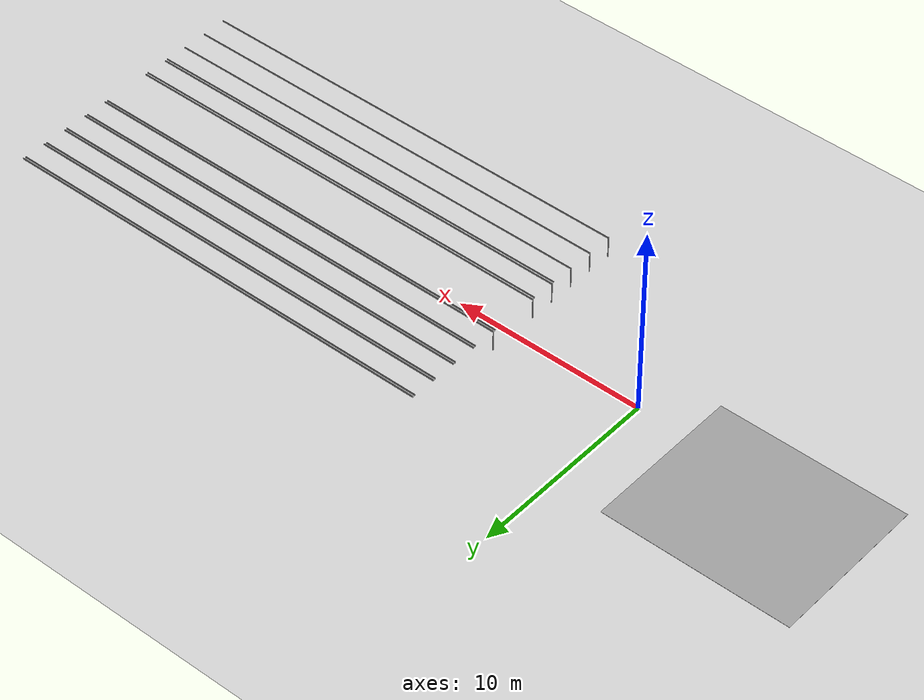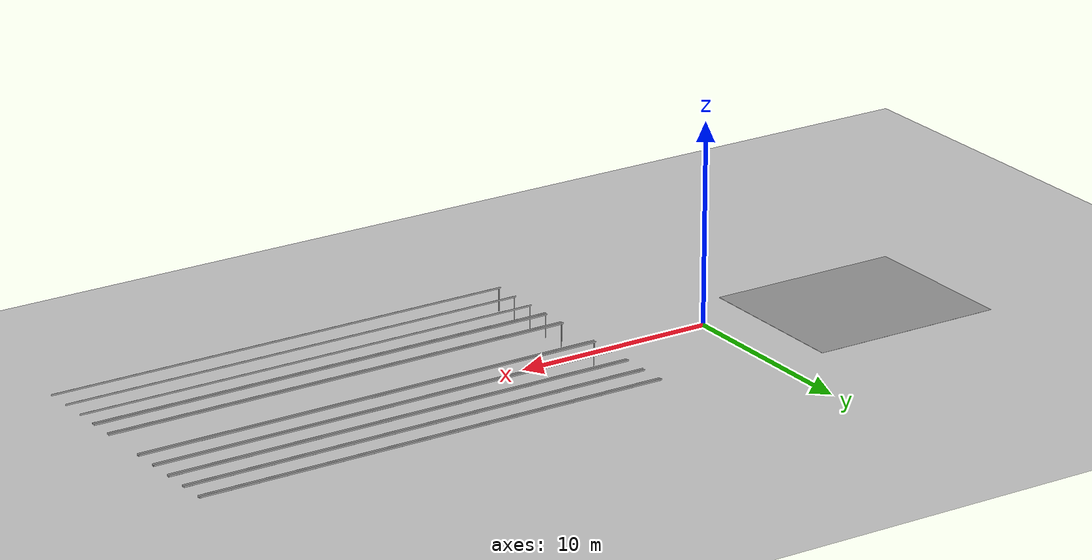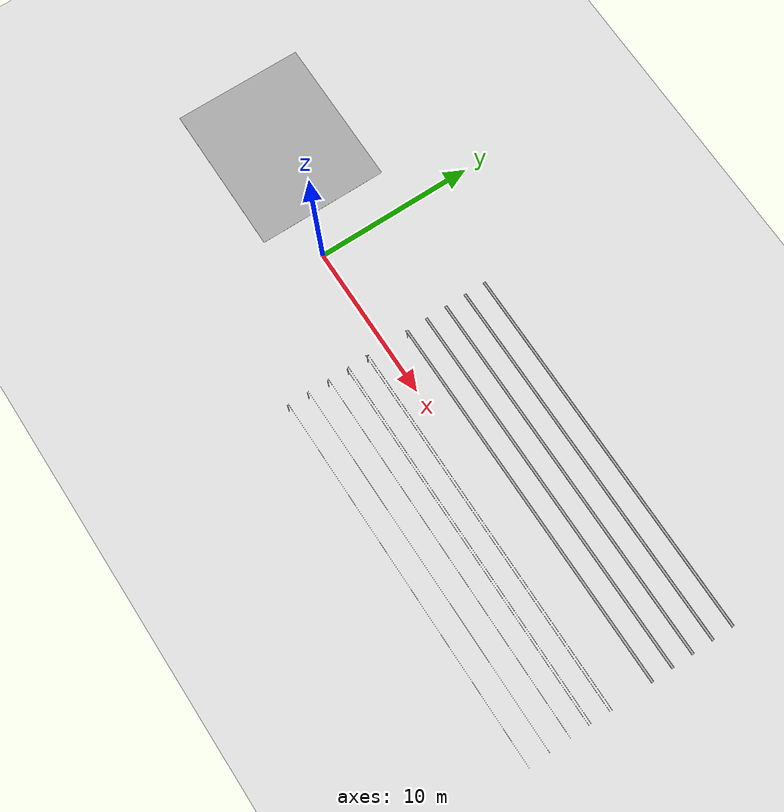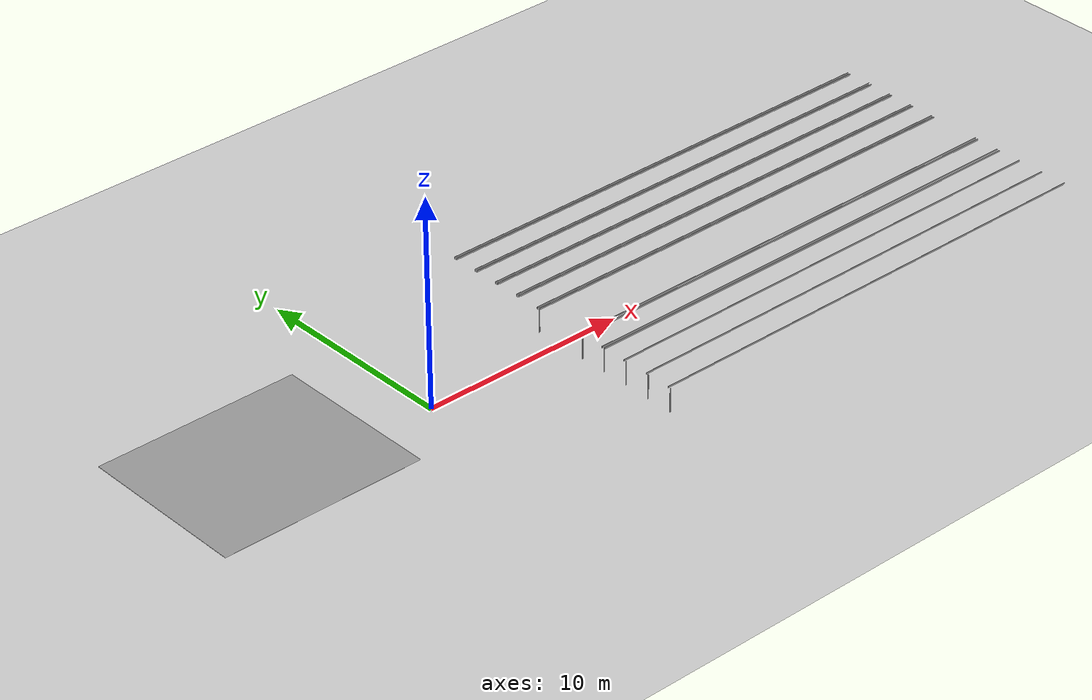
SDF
<sdf version="1.4">
 <world name="default">
  <model name="pole_0">
   <static>1</static>
   <pose>7.000 -6.640 0.575 0.0 0.0 0.0</pose>
   <link name="link">
    <collision name="collision">
     <geometry><cylinder><length>1.15</length><radius>0.025</radius></cylinder></geometry>
    </collision>
    <visual name="visual">
     <geometry><cylinder><length>1.15</length><radius>0.025</radius></cylinder></geometry>
     <material>
      <script><uri>file://media/materials/scripts/gazebo.material</uri><name>Gazebo/Chrome</name></script>
      <shader type="vertex"><normal_map>__default__</normal_map></shader>
      <emissive>0.1 0.1 0.1 1</emissive>
      <specular>0.01 0.01 0.01 1</specular>
      <ambient>0.5 0.5 0.5 1</ambient>
      <diffuse>0.05 0.05 0.05 1</diffuse>
     </material>
    </visual>
   </link>
  </model>
  <model name="pole_1">
   <static>1</static>
   <pose>7.000 -5.320 0.575 0.0 0.0 0.0</pose>
   <link name="link">
    <collision name="collision">
     <geometry><cylinder><length>1.15</length><radius>0.025</radius></cylinder></geometry>
    </collision>
    <visual name="visual">
     <geometry><cylinder><length>1.15</length><radius>0.025</radius></cylinder></geometry>
     <material>
      <script><uri>file://media/materials/scripts/gazebo.material</uri><name>Gazebo/Chrome</name></script>
      <shader type="vertex"><normal_map>__default__</normal_map></shader>
      <emissive>0.1 0.1 0.1 1</emissive>
      <specular>0.01 0.01 0.01 1</specular>
      <ambient>0.5 0.5 0.5 1</ambient>
      <diffuse>0.05 0.05 0.05 1</diffuse>
     </material>
    </visual>
   </link>
  </model>
  <model name="pole_2">
   <static>1</static>
   <pose>7.000 -4.000 0.575 0.0 0.0 0.0</pose>
   <link name="link">
    <collision name="collision">
     <geometry><cylinder><length>1.15</length><radius>0.025</radius></cylinder></geometry>
    </collision>
    <visual name="visual">
     <geometry><cylinder><length>1.15</length><radius>0.025</radius></cylinder></geometry>
     <material>
      <script><uri>file://media/materials/scripts/gazebo.material</uri><name>Gazebo/Chrome</name></script>
      <shader type="vertex"><normal_map>__default__</normal_map></shader>
      <emissive>0.1 0.1 0.1 1</emissive>
      <specular>0.01 0.01 0.01 1</specular>
      <ambient>0.5 0.5 0.5 1</ambient>
      <diffuse>0.05 0.05 0.05 1</diffuse>
     </material>
    </visual>
   </link>
  </model>
  <model name="pole_3">
   <static>1</static>
   <pose>7.000 -2.680 0.575 0.0 0.0 0.0</pose>
   <link name="link">
    <collision name="collision">
     <geometry><cylinder><length>1.15</length><radius>0.025</radius></cylinder></geometry>
    </collision>
    <visual name="visual">
     <geometry><cylinder><length>1.15</length><radius>0.025</radius></cylinder></geometry>
     <material>
      <script><uri>file://media/materials/scripts/gazebo.material</uri><name>Gazebo/Chrome</name></script>
      <shader type="vertex"><normal_map>__default__</normal_map></shader>
      <emissive>0.1 0.1 0.1 1</emissive>
      <specular>0.01 0.01 0.01 1</specular>
      <ambient>0.5 0.5 0.5 1</ambient>
      <diffuse>0.05 0.05 0.05 1</diffuse>
     </material>
    </visual>
   </link>
  </model>
  <model name="pole_4">
   <static>1</static>
   <pose>7.000 -1.360 0.575 0.0 0.0 0.0</pose>
   <link name="link">
    <collision name="collision">
     <geometry><cylinder><length>1.15</length><radius>0.025</radius></cylinder></geometry>
    </collision>
    <visual name="visual">
     <geometry><cylinder><length>1.15</length><radius>0.025</radius></cylinder></geometry>
     <material>
      <script><uri>file://media/materials/scripts/gazebo.material</uri><name>Gazebo/Chrome</name></script>
      <shader type="vertex"><normal_map>__default__</normal_map></shader>
      <emissive>0.1 0.1 0.1 1</emissive>
      <specular>0.01 0.01 0.01 1</specular>
      <ambient>0.5 0.5 0.5 1</ambient>
      <diffuse>0.05 0.05 0.05 1</diffuse>
     </material>
    </visual>
   </link>
  </model>
  <model name="tray_p2_3">
   <static>1</static>
   <link name="link_0">
    <collision name="collision"><geometry><box><size>23.62 0.085 0.005</size></box></geometry></collision>
    <visual name="visual">
     <geometry><box><size>23.62 0.085 0.005</size></box></geometry>
     <material>
      <script><uri>file://media/materials/scripts/gazebo.material</uri><name>Gazebo/Grey</name></script>
      <emissive>0 0 0 1</emissive>
      <shader type="vertex"><normal_map>__default__</normal_map></shader>
      <specular>0.01 0.01 0.01 1</specular>
      <lighting>1</lighting>
      <ambient>0.7 0.7 0.7 1</ambient>
      <diffuse>0.3 0.3 0.3 1</diffuse>
     </material>
    </visual>
    <pose>18.760 -2.755 1.19165 1.5707 0.0 0.0</pose>
   </link>
  </model>
  <model name="tray_p2_4">
   <static>1</static>
   <link name="link_0">
    <collision name="collision"><geometry><box><size>23.62 0.085 0.005</size></box></geometry></collision>
    <visual name="visual">
     <geometry><box><size>23.62 0.085 0.005</size></box></geometry>
     <material>
      <script><uri>file://media/materials/scripts/gazebo.material</uri><name>Gazebo/Grey</name></script>
      <emissive>0 0 0 1</emissive>
      <shader type="vertex"><normal_map>__default__</normal_map></shader>
      <specular>0.01 0.01 0.01 1</specular>
      <lighting>1</lighting>
      <ambient>0.7 0.7 0.7 1</ambient>
      <diffuse>0.3 0.3 0.3 1</diffuse>
     </material>
    </visual>
    <pose>18.760 -1.435 1.19165 1.5707 0.0 0.0</pose>
   </link>
  </model>
  <model name="tray_p2_5">
   <static>1</static>
   <link name="link_0">
    <collision name="collision"><geometry><box><size>23.62 0.085 0.005</size></box></geometry></collision>
    <visual name="visual">
     <geometry><box><size>23.62 0.085 0.005</size></box></geometry>
     <material>
      <script><uri>file://media/materials/scripts/gazebo.material</uri><name>Gazebo/Grey</name></script>
      <emissive>0 0 0 1</emissive>
      <shader type="vertex"><normal_map>__default__</normal_map></shader>
      <specular>0.01 0.01 0.01 1</specular>
      <lighting>1</lighting>
      <ambient>0.7 0.7 0.7 1</ambient>
      <diffuse>0.3 0.3 0.3 1</diffuse>
     </material>
    </visual>
    <pose>18.760 -6.565 1.19165 1.5707 0.0 0.0</pose>
   </link>
  </model>
  <model name="tray_p2_6">
   <static>1</static>
   <link name="link_0">
    <collision name="collision"><geometry><box><size>23.62 0.085 0.005</size></box></geometry></collision>
    <visual name="visual">
     <geometry><box><size>23.62 0.085 0.005</size></box></geometry>
     <material>
      <script><uri>file://media/materials/scripts/gazebo.material</uri><name>Gazebo/Grey</name></script>
      <emissive>0 0 0 1</emissive>
      <shader type="vertex"><normal_map>__default__</normal_map></shader>
      <specular>0.01 0.01 0.01 1</specular>
      <lighting>1</lighting>
      <ambient>0.7 0.7 0.7 1</ambient>
      <diffuse>0.3 0.3 0.3 1</diffuse>
     </material>
    </visual>
    <pose>18.760 -5.245 1.19165 1.5707 0.0 0.0</pose>
   </link>
  </model>
  <model name="tray_p2_7">
   <static>1</static>
   <link name="link_0">
    <collision name="collision"><geometry><box><size>23.62 0.085 0.005</size></box></geometry></collision>
    <visual name="visual">
     <geometry><box><size>23.62 0.085 0.005</size></box></geometry>
     <material>
      <script><uri>file://media/materials/scripts/gazebo.material</uri><name>Gazebo/Grey</name></script>
      <emissive>0 0 0 1</emissive>
      <shader type="vertex"><normal_map>__default__</normal_map></shader>
      <specular>0.01 0.01 0.01 1</specular>
      <lighting>1</lighting>
      <ambient>0.7 0.7 0.7 1</ambient>
      <diffuse>0.3 0.3 0.3 1</diffuse>
     </material>
    </visual>
    <pose>18.760 -3.925 1.19165 1.5707 0.0 0.0</pose>
   </link>
  </model>
  <model name="tray_p2_8">
   <static>1</static>
   <link name="link_0">
    <collision name="collision"><geometry><box><size>23.62 0.085 0.005</size></box></geometry></collision>
    <visual name="visual">
     <geometry><box><size>23.62 0.085 0.005</size></box></geometry>
     <material>
      <script><uri>file://media/materials/scripts/gazebo.material</uri><name>Gazebo/Grey</name></script>
      <emissive>0 0 0 1</emissive>
      <shader type="vertex"><normal_map>__default__</normal_map></shader>
      <specular>0.01 0.01 0.01 1</specular>
      <lighting>1</lighting>
      <ambient>0.7 0.7 0.7 1</ambient>
      <diffuse>0.3 0.3 0.3 1</diffuse>
     </material>
    </visual>
    <pose>18.760 -2.605 1.19165 1.5707 0.0 0.0</pose>
   </link>
  </model>
  <model name="tray_p2_9">
   <static>1</static>
   <link name="link_0">
    <collision name="collision"><geometry><box><size>23.62 0.085 0.005</size></box></geometry></collision>
    <visual name="visual">
     <geometry><box><size>23.62 0.085 0.005</size></box></geometry>
     <material>
      <script><uri>file://media/materials/scripts/gazebo.material</uri><name>Gazebo/Grey</name></script>
      <emissive>0 0 0 1</emissive>
      <shader type="vertex"><normal_map>__default__</normal_map></shader>
      <specular>0.01 0.01 0.01 1</specular>
      <lighting>1</lighting>
      <ambient>0.7 0.7 0.7 1</ambient>
      <diffuse>0.3 0.3 0.3 1</diffuse>
     </material>
    </visual>
    <pose>18.760 -1.285 1.19165 1.5707 0.0 0.0</pose>
   </link>
  </model>
  <model name="pole_45">
   <static>1</static>
   <pose>7.000 1.320 0.575 0.0 0.0 0.0</pose>
   <link name="link">
    <collision name="collision">
     <geometry><cylinder><length>1.15</length><radius>0.025</radius></cylinder></geometry>
    </collision>
    <visual name="visual">
     <geometry><cylinder><length>1.15</length><radius>0.025</radius></cylinder></geometry>
     <material>
      <script><uri>file://media/materials/scripts/gazebo.material</uri><name>Gazebo/Chrome</name></script>
      <shader type="vertex"><normal_map>__default__</normal_map></shader>
      <emissive>0.1 0.1 0.1 1</emissive>
      <specular>0.01 0.01 0.01 1</specular>
      <ambient>0.5 0.5 0.5 1</ambient>
      <diffuse>0.05 0.05 0.05 1</diffuse>
     </material>
    </visual>
   </link>
  </model>
  <model name="tray_5">
   <static>1</static>
   <link name="link_0">
    <collision name="collision"><geometry><box><size>23.620 0.15 0.005</size></box></geometry></collision>
    <visual name="visual">
     <geometry><box><size>23.620 0.15 0.005</size></box></geometry>
     <material>
      <script><uri>file://media/materials/scripts/gazebo.material</uri><name>Gazebo/Grey</name></script>
      <emissive>0 0 0 1</emissive>
      <shader type="vertex"><normal_map>__default__</normal_map></shader>
      <specular>0.01 0.01 0.01 1</specular>
      <lighting>1</lighting>
      <ambient>0.7 0.7 0.7 1</ambient>
      <diffuse>0.3 0.3 0.3 1</diffuse>
     </material>
    </visual>
    <pose>18.760 1.320 1.14965 0.0 0.0 0.0</pose>
   </link>
  </model>
  <model name="tray_6">
   <static>1</static>
   <link name="link_0">
    <collision name="collision"><geometry><box><size>23.620 0.15 0.005</size></box></geometry></collision>
    <visual name="visual">
     <geometry><box><size>23.620 0.15 0.005</size></box></geometry>
     <material>
      <script><uri>file://media/materials/scripts/gazebo.material</uri><name>Gazebo/Grey</name></script>
      <emissive>0 0 0 1</emissive>
      <shader type="vertex"><normal_map>__default__</normal_map></shader>
      <specular>0.01 0.01 0.01 1</specular>
      <lighting>1</lighting>
      <ambient>0.7 0.7 0.7 1</ambient>
      <diffuse>0.3 0.3 0.3 1</diffuse>
     </material>
    </visual>
    <pose>18.760 2.640 1.14965 0.0 0.0 0.0</pose>
   </link>
  </model>
  <model name="tray_7">
   <static>1</static>
   <link name="link_0">
    <collision name="collision"><geometry><box><size>23.620 0.15 0.005</size></box></geometry></collision>
    <visual name="visual">
     <geometry><box><size>23.620 0.15 0.005</size></box></geometry>
     <material>
      <script><uri>file://media/materials/scripts/gazebo.material</uri><name>Gazebo/Grey</name></script>
      <emissive>0 0 0 1</emissive>
      <shader type="vertex"><normal_map>__default__</normal_map></shader>
      <specular>0.01 0.01 0.01 1</specular>
      <lighting>1</lighting>
      <ambient>0.7 0.7 0.7 1</ambient>
      <diffuse>0.3 0.3 0.3 1</diffuse>
     </material>
    </visual>
    <pose>18.760 3.960 1.14965 0.0 0.0 0.0</pose>
   </link>
  </model>
  <model name="tray_8">
   <static>1</static>
   <link name="link_0">
    <collision name="collision"><geometry><box><size>23.620 0.15 0.005</size></box></geometry></collision>
    <visual name="visual">
     <geometry><box><size>23.620 0.15 0.005</size></box></geometry>
     <material>
      <script><uri>file://media/materials/scripts/gazebo.material</uri><name>Gazebo/Grey</name></script>
      <emissive>0 0 0 1</emissive>
      <shader type="vertex"><normal_map>__default__</normal_map></shader>
      <specular>0.01 0.01 0.01 1</specular>
      <lighting>1</lighting>
      <ambient>0.7 0.7 0.7 1</ambient>
      <diffuse>0.3 0.3 0.3 1</diffuse>
     </material>
    </visual>
    <pose>18.760 5.280 1.14965 0.0 0.0 0.0</pose>
   </link>
  </model>
  <model name="tray_9">
   <static>1</static>
   <link name="link_0">
    <collision name="collision"><geometry><box><size>23.620 0.15 0.005</size></box></geometry></collision>
    <visual name="visual">
     <geometry><box><size>23.620 0.15 0.005</size></box></geometry>
     <material>
      <script><uri>file://media/materials/scripts/gazebo.material</uri><name>Gazebo/Grey</name></script>
      <emissive>0 0 0 1</emissive>
      <shader type="vertex"><normal_map>__default__</normal_map></shader>
      <specular>0.01 0.01 0.01 1</specular>
      <lighting>1</lighting>
      <ambient>0.7 0.7 0.7 1</ambient>
      <diffuse>0.3 0.3 0.3 1</diffuse>
     </material>
    </visual>
    <pose>18.760 6.600 1.14965 0.0 0.0 0.0</pose>
   </link>
  </model>
  <model name="tray_p2_10">
   <static>1</static>
   <link name="link_0">
    <collision name="collision"><geometry><box><size>23.62 0.085 0.005</size></box></geometry></collision>
    <visual name="visual">
     <geometry><box><size>23.62 0.085 0.005</size></box></geometry>
     <material>
      <script><uri>file://media/materials/scripts/gazebo.material</uri><name>Gazebo/Grey</name></script>
      <emissive>0 0 0 1</emissive>
      <shader type="vertex"><normal_map>__default__</normal_map></shader>
      <specular>0.01 0.01 0.01 1</specular>
      <lighting>1</lighting>
      <ambient>0.7 0.7 0.7 1</ambient>
      <diffuse>0.3 0.3 0.3 1</diffuse>
     </material>
    </visual>
    <pose>18.760 1.245 1.19165 1.5707 0.0 0.0</pose>
   </link>
  </model>
  <model name="tray_p2_11">
   <static>1</static>
   <link name="link_0">
    <collision name="collision"><geometry><box><size>23.62 0.085 0.005</size></box></geometry></collision>
    <visual name="visual">
     <geometry><box><size>23.62 0.085 0.005</size></box></geometry>
     <material>
      <script><uri>file://media/materials/scripts/gazebo.material</uri><name>Gazebo/Grey</name></script>
      <emissive>0 0 0 1</emissive>
      <shader type="vertex"><normal_map>__default__</normal_map></shader>
      <specular>0.01 0.01 0.01 1</specular>
      <lighting>1</lighting>
      <ambient>0.7 0.7 0.7 1</ambient>
      <diffuse>0.3 0.3 0.3 1</diffuse>
     </material>
    </visual>
    <pose>18.760 2.565 1.19165 1.5707 0.0 0.0</pose>
   </link>
  </model>
  <model name="tray_p2_12">
   <static>1</static>
   <link name="link_0">
    <collision name="collision"><geometry><box><size>23.62 0.085 0.005</size></box></geometry></collision>
    <visual name="visual">
     <geometry><box><size>23.62 0.085 0.005</size></box></geometry>
     <material>
      <script><uri>file://media/materials/scripts/gazebo.material</uri><name>Gazebo/Grey</name></script>
      <emissive>0 0 0 1</emissive>
      <shader type="vertex"><normal_map>__default__</normal_map></shader>
      <specular>0.01 0.01 0.01 1</specular>
      <lighting>1</lighting>
      <ambient>0.7 0.7 0.7 1</ambient>
      <diffuse>0.3 0.3 0.3 1</diffuse>
     </material>
    </visual>
    <pose>18.760 3.885 1.19165 1.5707 0.0 0.0</pose>
   </link>
  </model>
  <model name="tray_p2_13">
   <static>1</static>
   <link name="link_0">
    <collision name="collision"><geometry><box><size>23.62 0.085 0.005</size></box></geometry></collision>
    <visual name="visual">
     <geometry><box><size>23.62 0.085 0.005</size></box></geometry>
     <material>
      <script><uri>file://media/materials/scripts/gazebo.material</uri><name>Gazebo/Grey</name></script>
      <emissive>0 0 0 1</emissive>
      <shader type="vertex"><normal_map>__default__</normal_map></shader>
      <specular>0.01 0.01 0.01 1</specular>
      <lighting>1</lighting>
      <ambient>0.7 0.7 0.7 1</ambient>
      <diffuse>0.3 0.3 0.3 1</diffuse>
     </material>
    </visual>
    <pose>18.760 5.205 1.19165 1.5707 0.0 0.0</pose>
   </link>
  </model>
  <model name="tray_p2_14">
   <static>1</static>
   <link name="link_0">
    <collision name="collision"><geometry><box><size>23.62 0.085 0.005</size></box></geometry></collision>
    <visual name="visual">
     <geometry><box><size>23.62 0.085 0.005</size></box></geometry>
     <material>
      <script><uri>file://media/materials/scripts/gazebo.material</uri><name>Gazebo/Grey</name></script>
      <emissive>0 0 0 1</emissive>
      <shader type="vertex"><normal_map>__default__</normal_map></shader>
      <specular>0.01 0.01 0.01 1</specular>
      <lighting>1</lighting>
      <ambient>0.7 0.7 0.7 1</ambient>
      <diffuse>0.3 0.3 0.3 1</diffuse>
     </material>
    </visual>
    <pose>18.760 6.525 1.19165 1.5707 0.0 0.0</pose>
   </link>
  </model>
  <model name="tray_p2_15">
   <static>1</static>
   <link name="link_0">
    <collision name="collision"><geometry><box><size>23.62 0.085 0.005</size></box></geometry></collision>
    <visual name="visual">
     <geometry><box><size>23.62 0.085 0.005</size></box></geometry>
     <material>
      <script><uri>file://media/materials/scripts/gazebo.material</uri><name>Gazebo/Grey</name></script>
      <emissive>0 0 0 1</emissive>
      <shader type="vertex"><normal_map>__default__</normal_map></shader>
      <specular>0.01 0.01 0.01 1</specular>
      <lighting>1</lighting>
      <ambient>0.7 0.7 0.7 1</ambient>
      <diffuse>0.3 0.3 0.3 1</diffuse>
     </material>
    </visual>
    <pose>18.760 1.395 1.19165 1.5707 0.0 0.0</pose>
   </link>
  </model>
  <model name="tray_p2_16">
   <static>1</static>
   <link name="link_0">
    <collision name="collision"><geometry><box><size>23.62 0.085 0.005</size></box></geometry></collision>
    <visual name="visual">
     <geometry><box><size>23.62 0.085 0.005</size></box></geometry>
     <material>
      <script><uri>file://media/materials/scripts/gazebo.material</uri><name>Gazebo/Grey</name></script>
      <emissive>0 0 0 1</emissive>
      <shader type="vertex"><normal_map>__default__</normal_map></shader>
      <specular>0.01 0.01 0.01 1</specular>
      <lighting>1</lighting>
      <ambient>0.7 0.7 0.7 1</ambient>
      <diffuse>0.3 0.3 0.3 1</diffuse>
     </material>
    </visual>
    <pose>18.760 2.715 1.19165 1.5707 0.0 0.0</pose>
   </link>
  </model>
  <model name="tray_p2_17">
   <static>1</static>
   <link name="link_0">
    <collision name="collision"><geometry><box><size>23.62 0.085 0.005</size></box></geometry></collision>
    <visual name="visual">
     <geometry><box><size>23.62 0.085 0.005</size></box></geometry>
     <material>
      <script><uri>file://media/materials/scripts/gazebo.material</uri><name>Gazebo/Grey</name></script>
      <emissive>0 0 0 1</emissive>
      <shader type="vertex"><normal_map>__default__</normal_map></shader>
      <specular>0.01 0.01 0.01 1</specular>
      <lighting>1</lighting>
      <ambient>0.7 0.7 0.7 1</ambient>
      <diffuse>0.3 0.3 0.3 1</diffuse>
     </material>
    </visual>
    <pose>18.760 4.035 1.19165 1.5707 0.0 0.0</pose>
   </link>
  </model>
  <model name="tray_p2_18">
   <static>1</static>
   <link name="link_0">
    <collision name="collision"><geometry><box><size>23.62 0.085 0.005</size></box></geometry></collision>
    <visual name="visual">
     <geometry><box><size>23.62 0.085 0.005</size></box></geometry>
     <material>
      <script><uri>file://media/materials/scripts/gazebo.material</uri><name>Gazebo/Grey</name></script>
      <emissive>0 0 0 1</emissive>
      <shader type="vertex"><normal_map>__default__</normal_map></shader>
      <specular>0.01 0.01 0.01 1</specular>
      <lighting>1</lighting>
      <ambient>0.7 0.7 0.7 1</ambient>
      <diffuse>0.3 0.3 0.3 1</diffuse>
     </material>
    </visual>
    <pose>18.760 5.355 1.19165 1.5707 0.0 0.0</pose>
   </link>
  </model>
  <model name="tray_p2_19">
   <static>1</static>
   <link name="link_0">
    <collision name="collision"><geometry><box><size>23.62 0.085 0.005</size></box></geometry></collision>
    <visual name="visual">
     <geometry><box><size>23.62 0.085 0.005</size></box></geometry>
     <material>
      <script><uri>file://media/materials/scripts/gazebo.material</uri><name>Gazebo/Grey</name></script>
      <emissive>0 0 0 1</emissive>
      <shader type="vertex"><normal_map>__default__</normal_map></shader>
      <specular>0.01 0.01 0.01 1</specular>
      <lighting>1</lighting>
      <ambient>0.7 0.7 0.7 1</ambient>
      <diffuse>0.3 0.3 0.3 1</diffuse>
     </material>
    </visual>
    <pose>18.760 6.675 1.19165 1.5707 0.0 0.0</pose>
   </link>
  </model>
  <model name="fhs_floor_0">
   <static>1</static>
   <link name="link_0">
    <collision name="collision"><geometry><box><size>9.75 8.2 0.001</size></box></geometry></collision>
    <visual name="visual">
     <geometry><box><size>9.75 8.2 0.01</size></box></geometry>
     <material>
      <script><uri>file://media/materials/scripts/gazebo.material</uri><name>Gazebo/Grey</name></script>
      <emissive>0 0 0 1</emissive>
      <shader type="vertex"><normal_map>__default__</normal_map></shader>
      <specular>0.01 0.01 0.01 1</specular>
      <lighting>1</lighting>
      <ambient>0.3 0.3 0.3 1</ambient>
      <diffuse>0.7 0.7 0.7 1</diffuse>
     </material>
    </visual>
    <pose>-7.470 1.670 -0.001 0.0 0.0 3.141</pose>
   </link>
  </model>
  <include><uri>model://sun</uri></include>
  <include><uri>model://ground_plane</uri></include>
 </world>
</sdf>
